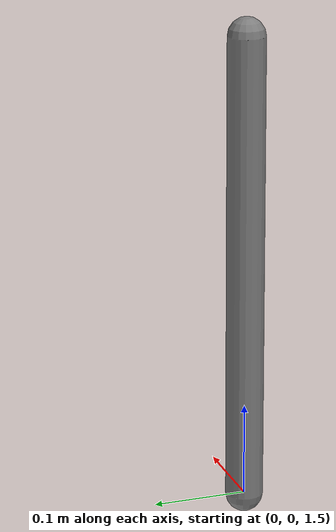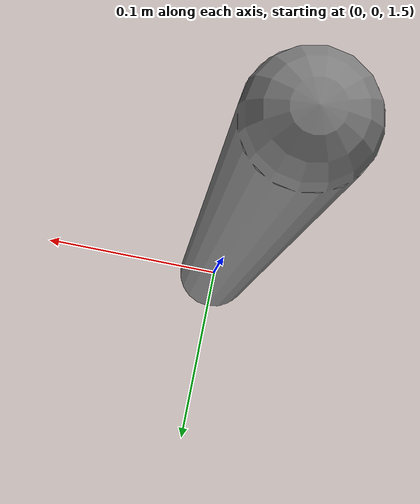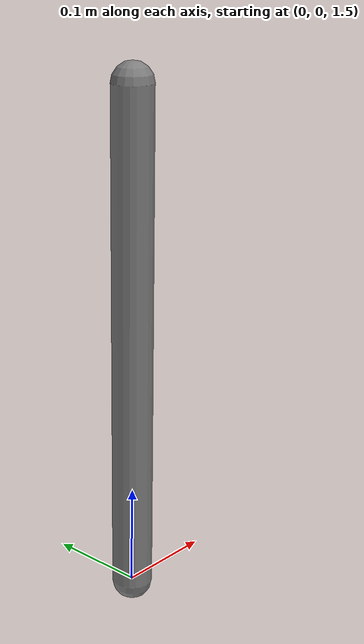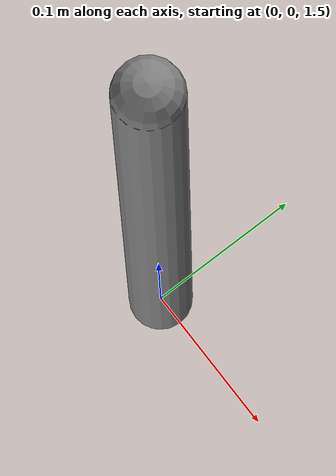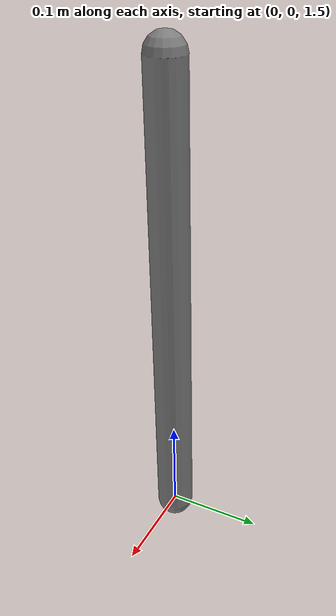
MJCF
<mujoco model="pendulum">
  <option gravity="0 0 -9.81" timestep="0.001"/>
  <compiler angle="radian"/>
  <worldbody>
    <body name="arm" pos="0 0 2">
      <joint name="hinge" type="hinge" axis="0 1 0" damping="0"/>
      <geom type="capsule" size="0.02" fromto="0 0 0 0 0 -0.5" mass="1.0"/>
      <site name="tip" pos="0 0 -0.5"/>
    </body>
  </worldbody>
  <sensor>
    <framelinacc name="tip_linacc" objtype="site" objname="tip"/>
  </sensor>
</mujoco>
